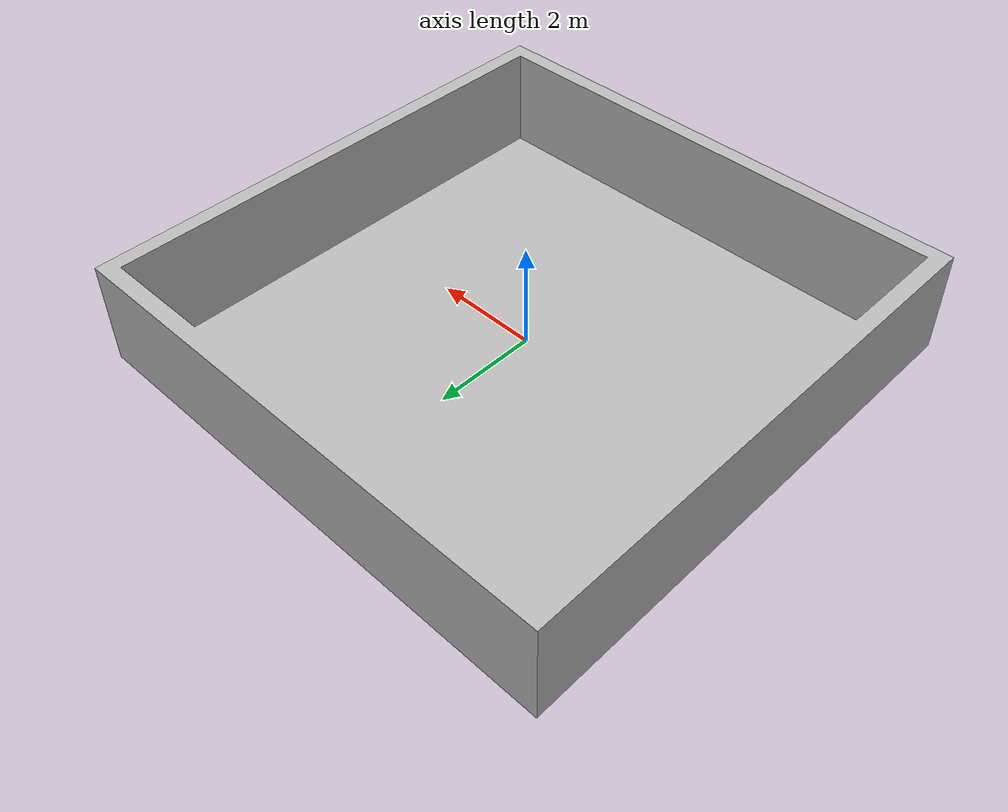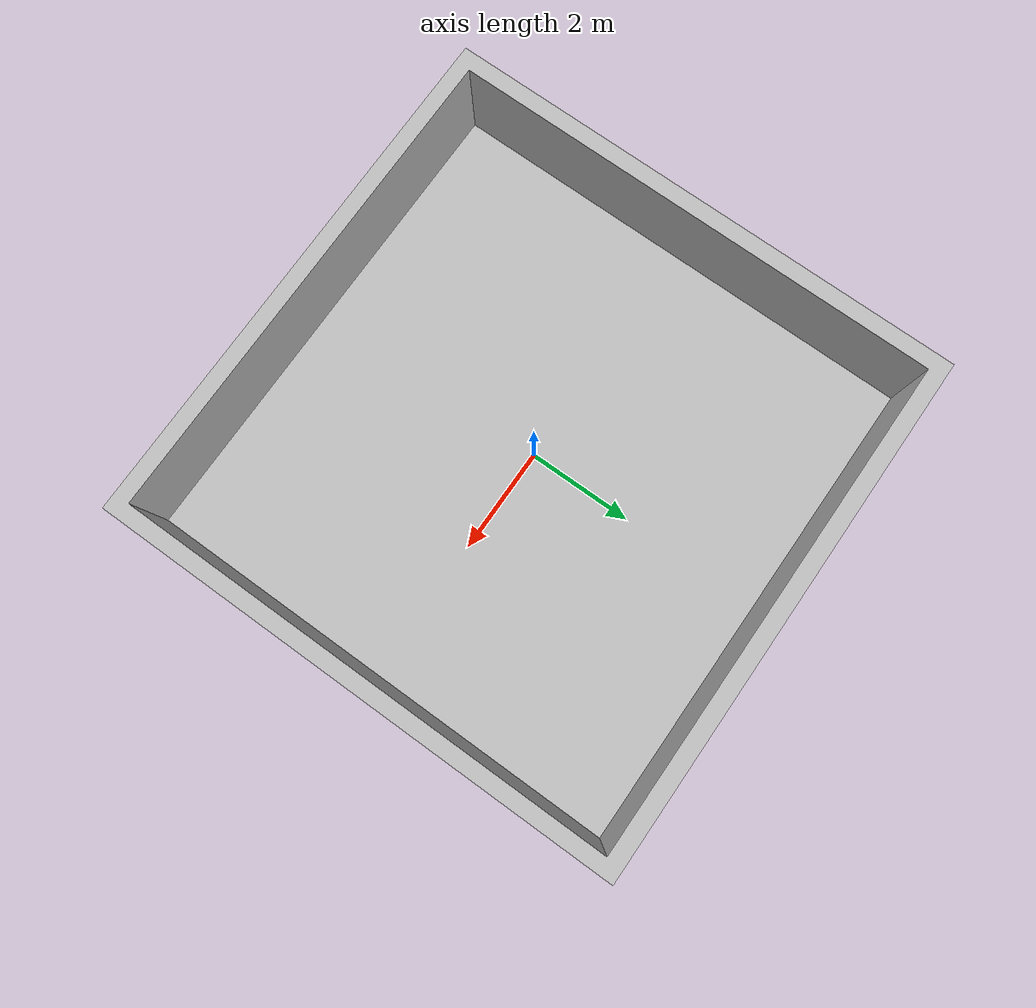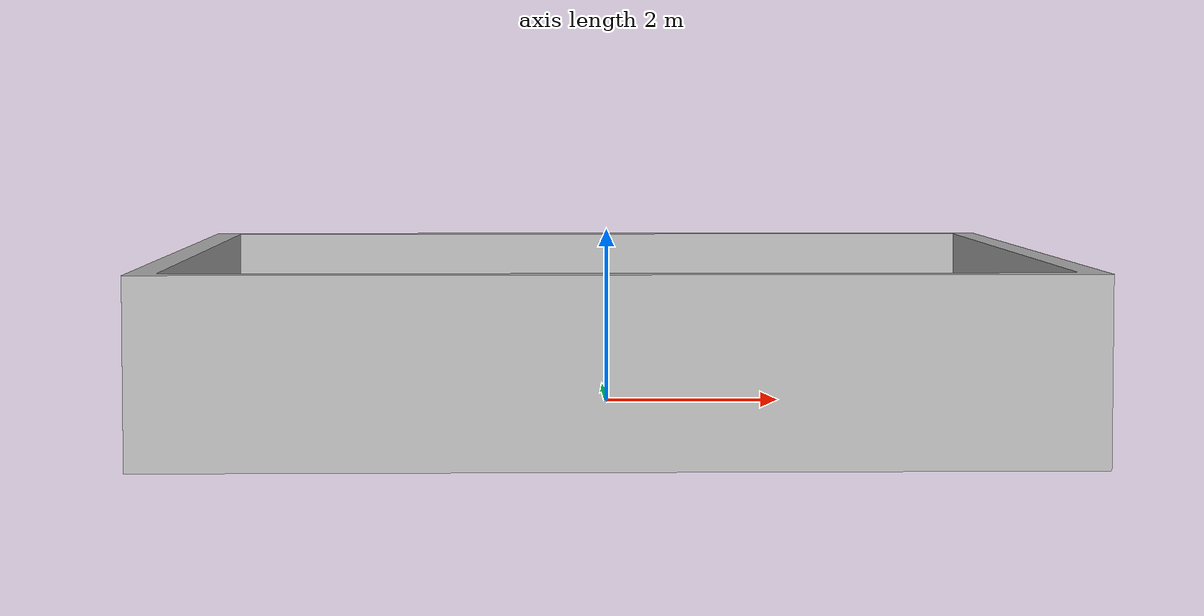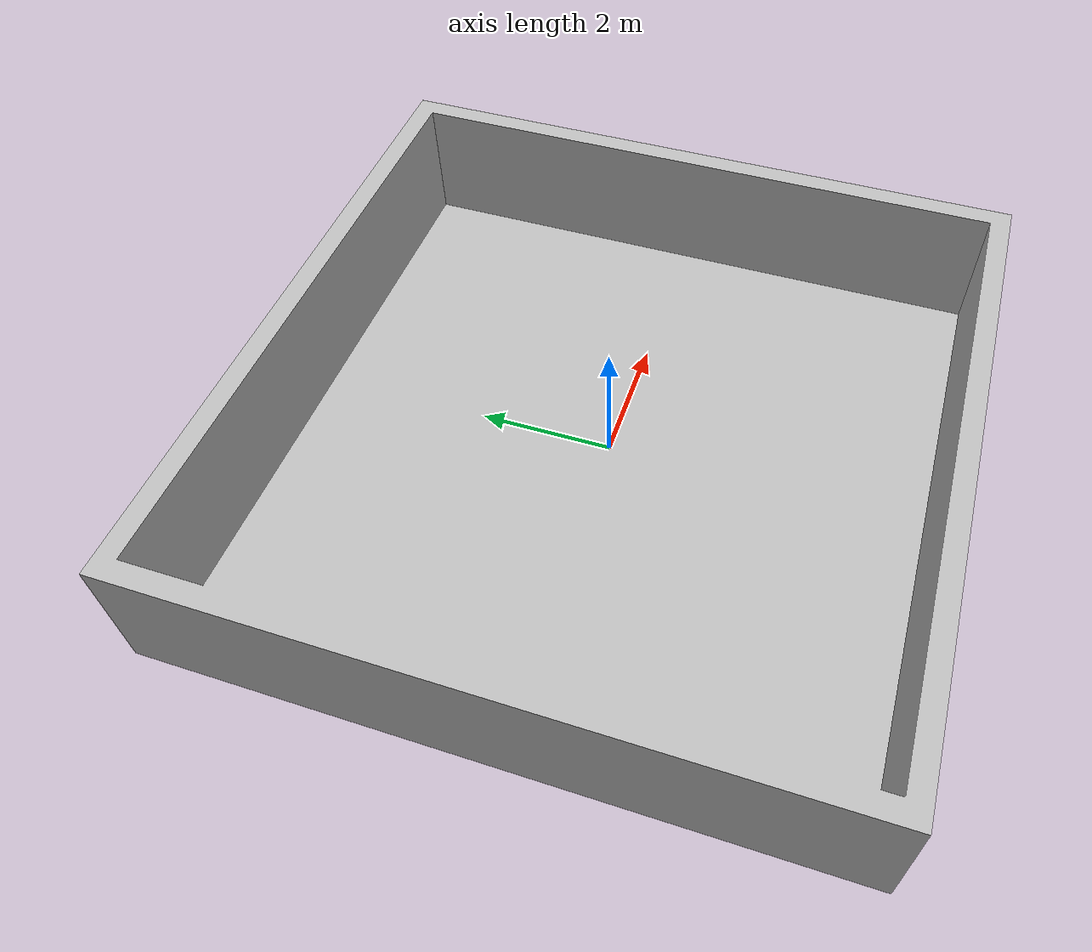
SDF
<?xml version="1.0" ?>
<sdf version="1.7">
  <model name="room2">
    <static>true</static>
    <link name="floor_1">
      <visual name="visual">
        <pose>0 0 -0.25 0 0 0</pose>
        <geometry>
          <mesh>
            <uri>model://room2/meshes/room2.obj</uri>
          </mesh>
        </geometry>
      </visual>
      <collision name="collision">
        <pose>0 0 -0.25 0 0 0</pose>
        <geometry>
          <mesh>
            <uri>model://room2/meshes/room2.obj</uri>
          </mesh>
        </geometry>
      </collision>
    </link>
  </model>
</sdf>
